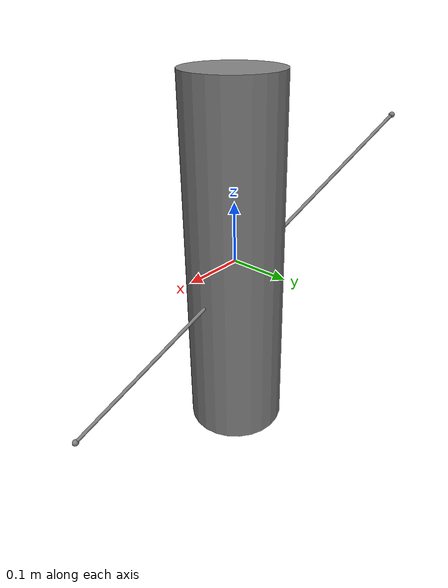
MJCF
<mujoco>
  <worldbody>
    <body name="b1" pos="-0.3 0.1 0.2">
      <joint name="j1" type="slide" axis="1 0 0"/>
      <site name="s1" pos="0 0 0"/>
    </body>
    <body name="cylinder_body" pos="0 0 0">
      <geom name="wrap_cyl" type="cylinder" size="0.08 0.3"/>
    </body>
    <body name="b2" pos="0.3 -0.05 -0.2">
      <joint name="j2" type="slide" axis="1 0 0"/>
      <site name="s2" pos="0 0 0"/>
    </body>
  </worldbody>
  <tendon>
    <spatial name="t_cyl">
      <site site="s1"/>
      <geom geom="wrap_cyl"/>
      <site site="s2"/>
    </spatial>
  </tendon>
</mujoco>
